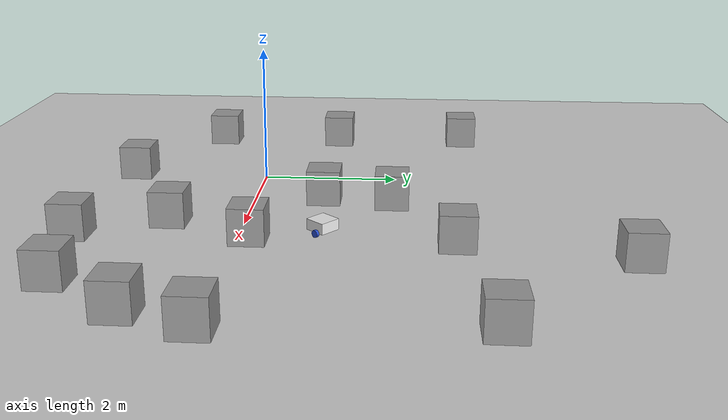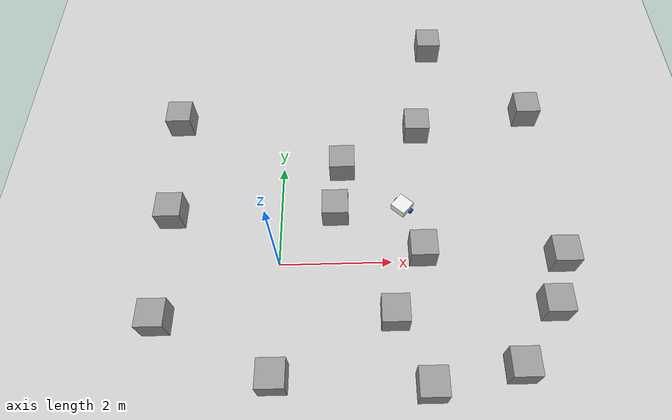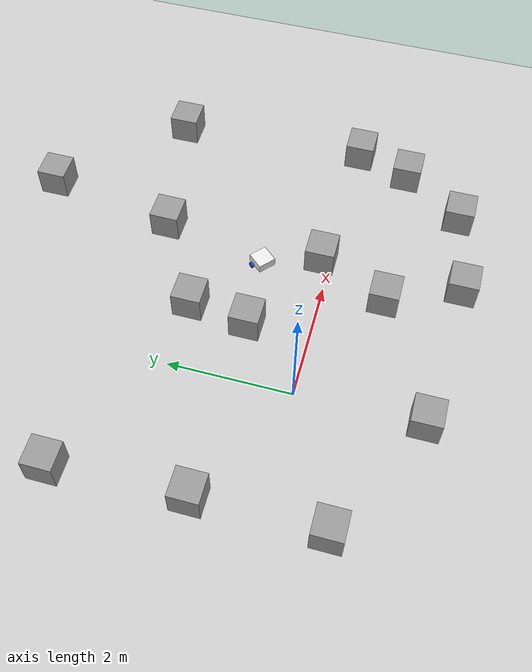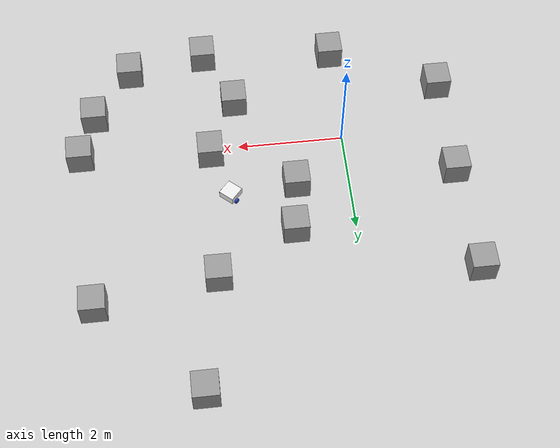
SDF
<sdf version="1.7">
 <world name="default">
  <light name="sun" type="directional">
   <pose>0 0 10 0 -0 0</pose>
   <diffuse>0.8 0.8 0.8 1</diffuse>
   <specular>0.2 0.2 0.2 1</specular>
   <attenuation>
    <range>1000</range>
    <constant>0.9</constant>
    <linear>0.01</linear>
    <quadratic>0.001</quadratic>
   </attenuation>
   <direction>-0.5 0.1 -0.9</direction>
   <spot><inner_angle>0</inner_angle><outer_angle>0</outer_angle><falloff>0</falloff></spot>
  </light>
  <model name="ground_plane">
   <static>1</static>
   <link name="link">
    <collision name="collision">
     <geometry><plane><normal>0 0 1</normal><size>100 100</size></plane></geometry>
     <surface>
      <contact><collide_bitmask>65535</collide_bitmask></contact>
      <friction><ode><mu>100</mu><mu2>50</mu2></ode></friction>
     </surface>
    </collision>
    <visual name="visual">
     <cast_shadows>0</cast_shadows>
     <geometry><plane><normal>0 0 1</normal><size>100 100</size></plane></geometry>
     <material>
      <script><uri>file://media/materials/scripts/gazebo.material</uri><name>Gazebo/Grey</name></script>
     </material>
    </visual>
   </link>
  </model>
  <gravity>0 0 -9.8</gravity>
  <magnetic_field>6e-06 2.3e-05 -4.2e-05</magnetic_field>
  <atmosphere type="adiabatic"/>
  <physics type="ode">
   <max_step_size>0.001</max_step_size>
   <real_time_factor>1</real_time_factor>
   <real_time_update_rate>1000</real_time_update_rate>
  </physics>
  <scene><ambient>0.4 0.4 0.4 1</ambient><background>0.7 0.7 0.7 1</background><shadows>1</shadows></scene>
  <audio><device>default</device></audio>
  <spherical_coordinates>
   <surface_model>EARTH_WGS84</surface_model>
   <latitude_deg>0</latitude_deg>
   <longitude_deg>0</longitude_deg>
   <elevation>0</elevation>
   <heading_deg>0</heading_deg>
  </spherical_coordinates>
  <model name="my_bot">
   <link name="base_link">
    <inertial>
     <pose>0.075714 0 0.053571 0 -0 0</pose>
     <mass>0.7</mass>
     <inertia>
      <ixx>0.00569107</ixx>
      <ixy>0</ixy>
      <ixz>0.000964286</ixz>
      <iyy>0.00684821</iyy>
      <iyz>0</iyz>
      <izz>0.00885714</izz>
     </inertia>
    </inertial>
    <collision name="base_link_fixed_joint_lump__chassis_collision">
     <pose>0.05 0 0.075 0 -0 0</pose>
     <geometry><box><size>0.3 0.3 0.15</size></box></geometry>
    </collision>
    <collision name="base_link_fixed_joint_lump__caster_wheel_collision_1">
     <pose>0.14 0 0 0 -0 0</pose>
     <geometry><sphere><radius>0.05</radius></sphere></geometry>
     <surface><friction><ode><mu>0.001</mu><mu2>0.001</mu2></ode></friction></surface>
    </collision>
    <visual name="base_link_fixed_joint_lump__chassis_visual">
     <pose>0.05 0 0.075 0 -0 0</pose>
     <geometry><box><size>0.3 0.3 0.15</size></box></geometry>
     <material>
      <script><name>Gazebo/White</name><uri>file://media/materials/scripts/gazebo.material</uri></script>
     </material>
    </visual>
    <visual name="base_link_fixed_joint_lump__caster_wheel_visual_1">
     <pose>0.14 0 0 0 -0 0</pose>
     <geometry><sphere><radius>0.05</radius></sphere></geometry>
     <material>
      <script><name>Gazebo/Black</name><uri>file://media/materials/scripts/gazebo.material</uri></script>
     </material>
    </visual>
   </link>
   <joint name="left_wheel_joint" type="revolute">
    <pose relative_to="base_link">0 0.175 0 -1.5708 0 0</pose>
    <parent>base_link</parent>
    <child>left_wheel</child>
    <axis>
     <xyz>0 0 1</xyz>
     <limit><lower>-1e+16</lower><upper>1e+16</upper></limit>
     <dynamics><spring_reference>0</spring_reference><spring_stiffness>0</spring_stiffness></dynamics>
    </axis>
   </joint>
   <link name="left_wheel">
    <pose relative_to="left_wheel_joint">0 0 0 0 -0 0</pose>
    <inertial>
     <mass>0.1</mass>
     <inertia>
      <ixx>7.58333e-05</ixx>
      <ixy>0</ixy>
      <ixz>0</ixz>
      <iyy>7.58333e-05</iyy>
      <iyz>0</iyz>
      <izz>0.000125</izz>
     </inertia>
    </inertial>
    <collision name="left_wheel_collision">
     <geometry><cylinder><length>0.04</length><radius>0.05</radius></cylinder></geometry>
    </collision>
    <visual name="left_wheel_visual">
     <geometry><cylinder><length>0.04</length><radius>0.05</radius></cylinder></geometry>
     <material>
      <script><name>Gazebo/Blue</name><uri>file://media/materials/scripts/gazebo.material</uri></script>
     </material>
    </visual>
   </link>
   <joint name="right_wheel_joint" type="revolute">
    <pose relative_to="base_link">0 -0.175 0 1.5708 -0 0</pose>
    <parent>base_link</parent>
    <child>right_wheel</child>
    <axis>
     <xyz>0 0 -1</xyz>
     <limit><lower>-1e+16</lower><upper>1e+16</upper></limit>
     <dynamics><spring_reference>0</spring_reference><spring_stiffness>0</spring_stiffness></dynamics>
    </axis>
   </joint>
   <link name="right_wheel">
    <pose relative_to="right_wheel_joint">0 0 0 0 -0 0</pose>
    <inertial>
     <mass>0.1</mass>
     <inertia>
      <ixx>7.58333e-05</ixx>
      <ixy>0</ixy>
      <ixz>0</ixz>
      <iyy>7.58333e-05</iyy>
      <iyz>0</iyz>
      <izz>0.000125</izz>
     </inertia>
    </inertial>
    <collision name="right_wheel_collision">
     <geometry><cylinder><length>0.04</length><radius>0.05</radius></cylinder></geometry>
    </collision>
    <visual name="right_wheel_visual">
     <geometry><cylinder><length>0.04</length><radius>0.05</radius></cylinder></geometry>
     <material>
      <script><name>Gazebo/Blue</name><uri>file://media/materials/scripts/gazebo.material</uri></script>
     </material>
    </visual>
   </link>
   <static>0</static>
   <plugin name="diff_drive" filename="libgazebo_ros_diff_drive.so">
    <left_joint>left_wheel_joint</left_joint>
    <right_joint>right_wheel_joint</right_joint>
    <wheel_separation>0.35</wheel_separation>
    <wheel_diameter>0.1</wheel_diameter>
    <max_wheel_torque>100</max_wheel_torque>
    <max_wheel_acceleration>100.0</max_wheel_acceleration>
    <odometry_frame>odom</odometry_frame>
    <robot_base_frame>base_link</robot_base_frame>
    <publish_odom>1</publish_odom>
    <publish_odom_tf>1</publish_odom_tf>
    <publish_wheel_tf>1</publish_wheel_tf>
   </plugin>
   <pose>2.2723 1.12342 0.05 0 1.8e-05 -2.29486</pose>
  </model>
  <model name="unit_box">
   <pose>2.52262 -2.1742 0.25168 0 -0 0</pose>
   <link name="link">
    <inertial>
     <mass>1</mass>
     <inertia>
      <ixx>0.166667</ixx>
      <ixy>0</ixy>
      <ixz>0</ixz>
      <iyy>0.166667</iyy>
      <iyz>0</iyz>
      <izz>0.166667</izz>
     </inertia>
    </inertial>
    <collision name="collision"><geometry><box><size>0.471841 0.476828 0.50336</size></box></geometry></collision>
    <visual name="visual">
     <geometry><box><size>0.471841 0.476828 0.50336</size></box></geometry>
     <material>
      <script><name>Gazebo/Grey</name><uri>file://media/materials/scripts/gazebo.material</uri></script>
     </material>
    </visual>
   </link>
  </model>
  <model name="unit_box_clone">
   <pose>2.5453 0.157835 0.25168 0 -0 0</pose>
   <link name="link">
    <inertial>
     <mass>1</mass>
     <inertia>
      <ixx>0.166667</ixx>
      <ixy>0</ixy>
      <ixz>0</ixz>
      <iyy>0.166667</iyy>
      <iyz>0</iyz>
      <izz>0.166667</izz>
     </inertia>
    </inertial>
    <collision name="collision"><geometry><box><size>0.471841 0.476828 0.50336</size></box></geometry></collision>
    <visual name="visual">
     <geometry><box><size>0.471841 0.476828 0.50336</size></box></geometry>
     <material>
      <script><name>Gazebo/Grey</name><uri>file://media/materials/scripts/gazebo.material</uri></script>
     </material>
    </visual>
   </link>
  </model>
  <model name="unit_box_clone_0">
   <pose>2.6047 2.8245 0.251643 -5e-06 1e-06 -0.010794</pose>
   <link name="link">
    <inertial>
     <mass>1</mass>
     <inertia>
      <ixx>0.166667</ixx>
      <ixy>0</ixy>
      <ixz>0</ixz>
      <iyy>0.166667</iyy>
      <iyz>0</iyz>
      <izz>0.166667</izz>
     </inertia>
    </inertial>
    <collision name="collision"><geometry><box><size>0.471841 0.476828 0.50336</size></box></geometry></collision>
    <visual name="visual">
     <geometry><box><size>0.471841 0.476828 0.50336</size></box></geometry>
     <material>
      <script><name>Gazebo/Grey</name><uri>file://media/materials/scripts/gazebo.material</uri></script>
     </material>
    </visual>
   </link>
  </model>
  <model name="unit_box_clone_2">
   <pose>1.13013 1.97356 0.25168 0 -0 0</pose>
   <link name="link">
    <inertial>
     <mass>1</mass>
     <inertia>
      <ixx>0.166667</ixx>
      <ixy>0</ixy>
      <ixz>0</ixz>
      <iyy>0.166667</iyy>
      <iyz>0</iyz>
      <izz>0.166667</izz>
     </inertia>
    </inertial>
    <collision name="collision"><geometry><box><size>0.471841 0.476828 0.50336</size></box></geometry></collision>
    <visual name="visual">
     <geometry><box><size>0.471841 0.476828 0.50336</size></box></geometry>
     <material>
      <script><name>Gazebo/Grey</name><uri>file://media/materials/scripts/gazebo.material</uri></script>
     </material>
    </visual>
   </link>
  </model>
  <model name="unit_box_clone_3">
   <pose>3.97856 -1.90662 0.25168 0 -0 0</pose>
   <link name="link">
    <inertial>
     <mass>1</mass>
     <inertia>
      <ixx>0.166667</ixx>
      <ixy>0</ixy>
      <ixz>0</ixz>
      <iyy>0.166667</iyy>
      <iyz>0</iyz>
      <izz>0.166667</izz>
     </inertia>
    </inertial>
    <collision name="collision"><geometry><box><size>0.471841 0.476828 0.50336</size></box></geometry></collision>
    <visual name="visual">
     <geometry><box><size>0.471841 0.476828 0.50336</size></box></geometry>
     <material>
      <script><name>Gazebo/Grey</name><uri>file://media/materials/scripts/gazebo.material</uri></script>
     </material>
    </visual>
   </link>
  </model>
  <model name="unit_box_clone_4">
   <pose>4.7046 -0.887652 0.25168 0 -0 0</pose>
   <link name="link">
    <inertial>
     <mass>1</mass>
     <inertia>
      <ixx>0.166667</ixx>
      <ixy>0</ixy>
      <ixz>0</ixz>
      <iyy>0.166667</iyy>
      <iyz>0</iyz>
      <izz>0.166667</izz>
     </inertia>
    </inertial>
    <collision name="collision"><geometry><box><size>0.471841 0.476828 0.50336</size></box></geometry></collision>
    <visual name="visual">
     <geometry><box><size>0.471841 0.476828 0.50336</size></box></geometry>
     <material>
      <script><name>Gazebo/Grey</name><uri>file://media/materials/scripts/gazebo.material</uri></script>
     </material>
    </visual>
   </link>
  </model>
  <model name="unit_box_clone_5">
   <pose>4.83629 3.19694 0.25168 0 -0 0</pose>
   <link name="link">
    <inertial>
     <mass>1</mass>
     <inertia>
      <ixx>0.166667</ixx>
      <ixy>0</ixy>
      <ixz>0</ixz>
      <iyy>0.166667</iyy>
      <iyz>0</iyz>
      <izz>0.166667</izz>
     </inertia>
    </inertial>
    <collision name="collision"><geometry><box><size>0.471841 0.476828 0.50336</size></box></geometry></collision>
    <visual name="visual">
     <geometry><box><size>0.471841 0.476828 0.50336</size></box></geometry>
     <material>
      <script><name>Gazebo/Grey</name><uri>file://media/materials/scripts/gazebo.material</uri></script>
     </material>
    </visual>
   </link>
  </model>
  <model name="unit_box_clone_6">
   <pose>-2.08409 3.10441 0.25168 0 -0 0</pose>
   <link name="link">
    <inertial>
     <mass>1</mass>
     <inertia>
      <ixx>0.166667</ixx>
      <ixy>0</ixy>
      <ixz>0</ixz>
      <iyy>0.166667</iyy>
      <iyz>0</iyz>
      <izz>0.166667</izz>
     </inertia>
    </inertial>
    <collision name="collision"><geometry><box><size>0.471841 0.476828 0.50336</size></box></geometry></collision>
    <visual name="visual">
     <geometry><box><size>0.471841 0.476828 0.50336</size></box></geometry>
     <material>
      <script><name>Gazebo/Grey</name><uri>file://media/materials/scripts/gazebo.material</uri></script>
     </material>
    </visual>
   </link>
  </model>
  <model name="unit_box_clone_7">
   <pose>-2 -1 0.25168 0 -0 0</pose>
   <link name="link">
    <inertial>
     <mass>1</mass>
     <inertia>
      <ixx>0.166667</ixx>
      <ixy>0</ixy>
      <ixz>0</ixz>
      <iyy>0.166667</iyy>
      <iyz>0</iyz>
      <izz>0.166667</izz>
     </inertia>
    </inertial>
    <collision name="collision"><geometry><box><size>0.471841 0.476828 0.50336</size></box></geometry></collision>
    <visual name="visual">
     <geometry><box><size>0.471841 0.476828 0.50336</size></box></geometry>
     <material>
      <script><name>Gazebo/Grey</name><uri>file://media/materials/scripts/gazebo.material</uri></script>
     </material>
    </visual>
   </link>
  </model>
  <model name="unit_box_clone_8">
   <pose>-0 -2 0.25168 0 -0 0</pose>
   <link name="link">
    <inertial>
     <mass>1</mass>
     <inertia>
      <ixx>0.166667</ixx>
      <ixy>0</ixy>
      <ixz>0</ixz>
      <iyy>0.166667</iyy>
      <iyz>0</iyz>
      <izz>0.166667</izz>
     </inertia>
    </inertial>
    <collision name="collision"><geometry><box><size>0.471841 0.476828 0.50336</size></box></geometry></collision>
    <visual name="visual">
     <geometry><box><size>0.471841 0.476828 0.50336</size></box></geometry>
     <material>
      <script><name>Gazebo/Grey</name><uri>file://media/materials/scripts/gazebo.material</uri></script>
     </material>
    </visual>
   </link>
  </model>
  <model name="unit_box_clone_9">
   <pose>-2 1 0.25168 0 -0 0</pose>
   <link name="link">
    <inertial>
     <mass>1</mass>
     <inertia>
      <ixx>0.166667</ixx>
      <ixy>0</ixy>
      <ixz>0</ixz>
      <iyy>0.166667</iyy>
      <iyz>0</iyz>
      <izz>0.166667</izz>
     </inertia>
    </inertial>
    <collision name="collision"><geometry><box><size>0.471841 0.476828 0.50336</size></box></geometry></collision>
    <visual name="visual">
     <geometry><box><size>0.471841 0.476828 0.50336</size></box></geometry>
     <material>
      <script><name>Gazebo/Grey</name><uri>file://media/materials/scripts/gazebo.material</uri></script>
     </material>
    </visual>
   </link>
  </model>
  <model name="unit_box_clone_10">
   <pose>1 1 0.25168 0 -0 0</pose>
   <link name="link">
    <inertial>
     <mass>1</mass>
     <inertia>
      <ixx>0.166667</ixx>
      <ixy>0</ixy>
      <ixz>0</ixz>
      <iyy>0.166667</iyy>
      <iyz>0</iyz>
      <izz>0.166667</izz>
     </inertia>
    </inertial>
    <collision name="collision"><geometry><box><size>0.471841 0.476828 0.50336</size></box></geometry></collision>
    <visual name="visual">
     <geometry><box><size>0.471841 0.476828 0.50336</size></box></geometry>
     <material>
      <script><name>Gazebo/Grey</name><uri>file://media/materials/scripts/gazebo.material</uri></script>
     </material>
    </visual>
   </link>
  </model>
  <model name="unit_box_clone_11">
   <pose>2 -1 0.25168 0 -0 0</pose>
   <link name="link">
    <inertial>
     <mass>1</mass>
     <inertia>
      <ixx>0.166667</ixx>
      <ixy>0</ixy>
      <ixz>0</ixz>
      <iyy>0.166667</iyy>
      <iyz>0</iyz>
      <izz>0.166667</izz>
     </inertia>
    </inertial>
    <collision name="collision"><geometry><box><size>0.471841 0.476828 0.50336</size></box></geometry></collision>
    <visual name="visual">
     <geometry><box><size>0.471841 0.476828 0.50336</size></box></geometry>
     <material>
      <script><name>Gazebo/Grey</name><uri>file://media/materials/scripts/gazebo.material</uri></script>
     </material>
    </visual>
   </link>
  </model>
  <model name="unit_box_clone_12">
   <pose>5 0 0.25168 0 -0 0</pose>
   <link name="link">
    <inertial>
     <mass>1</mass>
     <inertia>
      <ixx>0.166667</ixx>
      <ixy>0</ixy>
      <ixz>0</ixz>
      <iyy>0.166667</iyy>
      <iyz>0</iyz>
      <izz>0.166667</izz>
     </inertia>
    </inertial>
    <collision name="collision"><geometry><box><size>0.471841 0.476828 0.50336</size></box></geometry></collision>
    <visual name="visual">
     <geometry><box><size>0.471841 0.476828 0.50336</size></box></geometry>
     <material>
      <script><name>Gazebo/Grey</name><uri>file://media/materials/scripts/gazebo.material</uri></script>
     </material>
    </visual>
   </link>
  </model>
  <model name="unit_box_clone_13">
   <pose>3 5 0.25168 0 -0 0</pose>
   <link name="link">
    <inertial>
     <mass>1</mass>
     <inertia>
      <ixx>0.166667</ixx>
      <ixy>0</ixy>
      <ixz>0</ixz>
      <iyy>0.166667</iyy>
      <iyz>0</iyz>
      <izz>0.166667</izz>
     </inertia>
    </inertial>
    <collision name="collision"><geometry><box><size>0.471841 0.476828 0.50336</size></box></geometry></collision>
    <visual name="visual">
     <geometry><box><size>0.471841 0.476828 0.50336</size></box></geometry>
     <material>
      <script><name>Gazebo/Grey</name><uri>file://media/materials/scripts/gazebo.material</uri></script>
     </material>
    </visual>
   </link>
  </model>
 </world>
</sdf>
